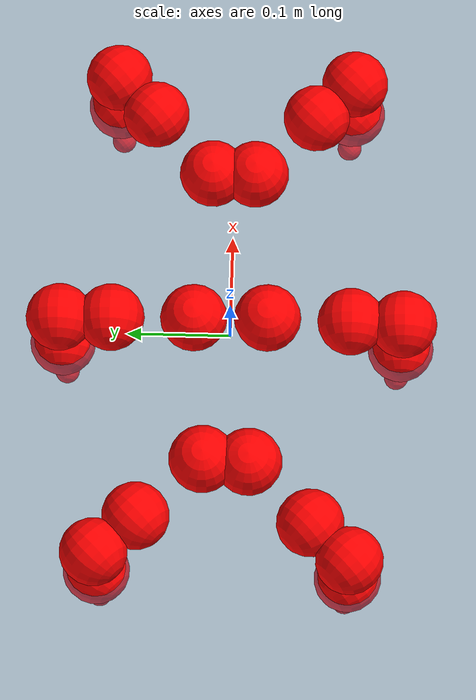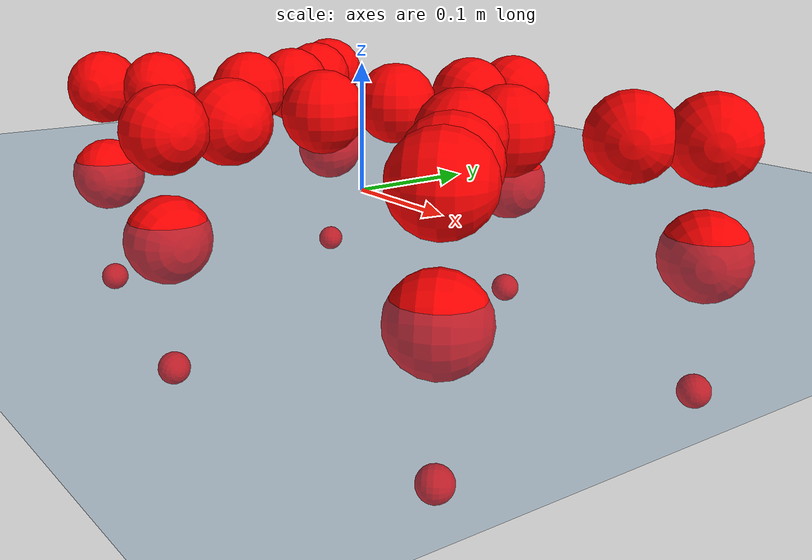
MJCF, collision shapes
<mujoco model="Golem">
  <compiler angle="radian" assetdir="assets" balanceinertia="true" inertiafromgeom="false"/>

  <option timestep="0.005" density="1.2" viscosity="2e-05"/>

  <size nkey="1"/>

  <visual>
    <quality shadowsize="8192"/>
    <map shadowclip="0.5"/>
  </visual>

  <default>
    <default class="/">
      <joint armature="0.01" damping="0.01" frictionloss="0.01"/>
      <geom contype="0" conaffinity="0" group="1" solref="-1000 -80"/>
      <site size="0.01 0.005 0.005" group="5"/>
      <general forcelimited="true" biastype="affine" gainprm="25" biasprm="0 -25 -0.5"/>
      <default class="visual">
        <geom type="mesh" group="2"/>
      </default>
      <default class="collision">
        <geom group="3"/>
      </default>
      <default class="foot">
        <geom size="0.01 0 0" condim="6" group="4" priority="1" solimp="0.015 1 0.01"/>
      </default>
      <default class="reward_collision_sphere">
        <geom group="5" rgba="1 0 0 1"/>
      </default>
    </default>
  </default>

  <asset>
    <texture type="skybox" colorspace="auto" name="//unnamed_texture_0" builtin="gradient" rgb1="0.95 0.95 0.95" rgb2="0.95 0.95 0.95" width="100" height="600"/>
    <texture type="2d" colorspace="auto" name="texplane" builtin="checker" rgb1="0.345 0.575 0.748" rgb2="0.345 0.575 0.748" markrgb="1 1 1" width="512" height="512"/>
    <material name="MatPlane" class="/" texture="texplane" texuniform="true" texrepeat="2 2" specular="0.9"/>
    <mesh name="body" class="/" file="body.stl" scale="0.001 0.001 0.001"/>
    <mesh name="coxa" class="/" file="coxa.stl" scale="0.001 0.001 0.001"/>
    <mesh name="femur" class="/" file="femur.stl" scale="0.001 0.001 0.001"/>
    <mesh name="tibia" class="/" file="tibia.stl" scale="0.001 0.001 0.001"/>
    <mesh name="tarsus" class="/" file="tarsus.stl" scale="0.001 0.001 0.001"/>
  </asset>

  <worldbody>
    <geom name="floor" class="/" size="100 100 0.125" type="plane" group="0" material="MatPlane"/>
    <light name="toplight_shadow" class="/" pos="0 0 5" dir="0.0990148 0.0990148 -0.990148" type="directional" ambient="0.04 0.04 0.04" diffuse="0.55 0.55 0.55" specular="0.12 0.12 0.12"/>
    <light name="toplight_fill" class="/" pos="0 0 5" dir="0.0990148 0.0990148 -0.990148" type="directional" castshadow="false" ambient="0.04 0.04 0.04" diffuse="0.3 0.3 0.3" specular="0.08 0.08 0.08"/>
    <body name="trunk" pos="-0.000129378 0.000146728 0.00028401" quat="1 0.00022498 0.000402179 -0.000207616">
      <inertial pos="0.000241906 -0.00066565 -0.00355271" quat="1 -0.0002749 -8.99709e-05 6.58601e-05" mass="1.9167" diaginertia="0.00631062 0.000239649 0.011016"/>
      <joint name="//unnamed_joint_0" type="free"/>
      <geom name="//unnamed_geom_1" class="/" pos="0 0 0.0652475" quat="1 0 0 0" type="mesh" rgba="0.9 0.9 0.9 1" mesh="body"/>
      <site name="imu" class="/" pos="0.121985 0.00444326 0.102993" size="0.0080155"/>
      <camera name="track" class="/" pos="0 -0.947199 0" quat="0.707107 0.707107 0 0" mode="trackcom"/>
      <camera name="ego_camera" class="/" pos="0.118502 0 0.101949" quat="-0.5 -0.5 0.5 0.5"/>
      <body name="coxa_RR" pos="-0.162542 -0.0400962 0.0662527" quat="0.382348 0.000435662 3.88883e-05 -0.924018">
        <inertial pos="-0.000255063 0.00012161 0.000434544" quat="0.999992 -0.0030278 0.000751717 0.00235381" mass="0.102111" diaginertia="0.00628488 0.000237457 0.0110103"/>
        <joint name="coxa_joint_RR" class="/" pos="0 0 0" axis="-0.002315 0.00127148 -0.999997" range="-3.13116 3.1293" armature="0.0079992" damping="0.0080403" frictionloss="0.00766366"/>
        <geom name="//unnamed_geom_2" class="/" type="mesh" rgba="0.2 0.2 0.2 1" mesh="coxa"/>
        <geom name="//unnamed_geom_3" class="reward_collision_sphere" size="0.032062" pos="-0.0273467 0 0"/>
        <body name="femur_RR" pos="0.0550206 0.00149207 -0.00137629" quat="0.500001 -0.499999 0.499999 0.5">
          <inertial pos="0.00024407 -6.92949e-05 -0.000464549" quat="1 0.000344607 -0.000630932 0.000317664" mass="0.102495" diaginertia="0.00622172 0.000235349 0.0110205"/>
          <joint name="femur_joint_RR" class="/" pos="0 0 0" axis="0.00255968 -0.00180547 -0.999995" range="-3.13176 3.13344" armature="0.00801366" damping="0.00151268" frictionloss="0.00806408"/>
          <geom name="//unnamed_geom_4" class="/" type="mesh" rgba="0.9 0.9 0.9 1" mesh="femur"/>
          <geom name="//unnamed_geom_5" class="reward_collision_sphere" size="0.032062"/>
          <body name="tibia_RR" pos="-6.36799e-05 -0.0512912 0.0013797" quat="0.000196552 1 9.36975e-05 0.000299427">
            <inertial pos="-0.000311321 -0.000476884 -0.00025851" quat="1 -0.000389945 -0.00024947 -0.000199777" mass="0.10264" diaginertia="0.0063069 0.000238337 0.011012"/>
            <joint name="tibia_joint_RR" class="/" pos="0 0 0" axis="-0.000409183 -0.00119119 0.999999" range="-3.12839 3.1328" armature="0.00813268" damping="0" frictionloss="0.00782425"/>
            <geom name="//unnamed_geom_6" class="/" type="mesh" rgba="0.2 0.2 0.2 1" mesh="tibia"/>
            <geom name="//unnamed_geom_7" class="reward_collision_sphere" size="0.032062"/>
            <body name="tarsus_RR" pos="0.0791907 -0.000488902 -0.0011986" quat="1 -0.00013786 0.000123779 3.54919e-05">
              <inertial pos="0.0552756 0.000507379 0.000476644" quat="0.499792 0.500393 0.500464 0.499351" mass="0.101599" diaginertia="0.00616518 0.000238089 0.0107707"/>
              <joint name="tarsus_joint_RR" class="/" pos="0 0 0" axis="0.000246039 0.00361229 0.999993" range="-3.12195 3.12955" armature="0.00796058" damping="0.00289581" frictionloss="0.00821195"/>
              <geom name="//unnamed_geom_8" class="/" type="mesh" rgba="0.9 0.9 0.9 1" mesh="tarsus"/>
              <geom name="foot_1" class="foot" size="0.00775775" pos="0.102094 0 0" quat="0 -0.707107 0 0.707107"/>
              <geom name="//unnamed_geom_10" class="reward_collision_sphere" size="0.032062"/>
              <geom name="//unnamed_geom_11" class="reward_collision_sphere" size="0.0120232" pos="0.0979923 0 0"/>
              <site name="foot_1" class="foot" pos="0.102094 0 0" quat="0 -0.707107 0 0.707107" size="0.0080155"/>
            </body>
          </body>
        </body>
      </body>
      <body name="coxa_RM" pos="-0.000691527 -0.0628707 0.0652918" quat="0.707222 4.16301e-05 -5.00977e-05 -0.706991">
        <inertial pos="-0.000599575 -0.000115101 8.19633e-05" quat="1 -0.000177361 0.000461612 -0.000103067" mass="0.10278" diaginertia="0.00624202 0.00023899 0.0110243"/>
        <joint name="coxa_joint_RM" class="/" pos="0 0 0" axis="-0.00279218 -0.000420269 -0.999996" range="-3.13583 3.13496" armature="0.00832623" damping="0.010695" frictionloss="0.00826372"/>
        <geom name="//unnamed_geom_12" class="/" type="mesh" rgba="0.2 0.2 0.2 1" mesh="coxa"/>
        <geom name="//unnamed_geom_13" class="reward_collision_sphere" size="0.032062" pos="-0.0273467 0 0"/>
        <body name="femur_RM" pos="0.0522522 -0.0014058 -0.000587" quat="0.500207 -0.499932 0.499899 0.499961">
          <inertial pos="-0.00078783 0.000178364 -4.48251e-05" quat="0.999999 0.000219749 -0.000956365 -0.00111277" mass="0.101373" diaginertia="0.00620015 0.000238823 0.0110432"/>
          <joint name="femur_joint_RM" class="/" pos="0 0 0" axis="0.00035053 0.00124797 -0.999999" range="-3.12152 3.14411" armature="0.00808262" damping="0.00109797" frictionloss="0.0077229"/>
          <geom name="//unnamed_geom_14" class="/" type="mesh" rgba="0.9 0.9 0.9 1" mesh="femur"/>
          <geom name="//unnamed_geom_15" class="reward_collision_sphere" size="0.032062"/>
          <body name="tibia_RM" pos="0.00118946 -0.0501215 -0.00105237" quat="-5.7043e-05 1 0.000138684 -0.00018922">
            <inertial pos="-0.000431405 -0.000250979 -5.99645e-05" quat="1 0.000113759 -9.81042e-05 6.30683e-05" mass="0.103129" diaginertia="0.006305 0.000236918 0.0109705"/>
            <joint name="tibia_joint_RM" class="/" pos="0 0 0" axis="-0.000255189 -9.47575e-06 1" range="-3.12961 3.15211" armature="0.00811911" damping="0.00284424" frictionloss="0.00835786"/>
            <geom name="//unnamed_geom_16" class="/" type="mesh" rgba="0.2 0.2 0.2 1" mesh="tibia"/>
            <geom name="//unnamed_geom_17" class="reward_collision_sphere" size="0.032062"/>
            <body name="tarsus_RM" pos="0.0789414 0.00055924 0.000474009" quat="1 4.50764e-05 9.45803e-05 4.94309e-05">
              <inertial pos="0.054014 0.000368619 0.000379465" quat="0.503006 0.499613 0.498562 0.498807" mass="0.10353" diaginertia="0.00622315 0.000236057 0.0111134"/>
              <joint name="tarsus_joint_RM" class="/" pos="0 0 0" axis="-7.02123e-05 -0.000566583 1" range="-3.12765 3.1204" armature="0.00837335" damping="0.00275503" frictionloss="0.00789474"/>
              <geom name="//unnamed_geom_18" class="/" type="mesh" rgba="0.9 0.9 0.9 1" mesh="tarsus"/>
              <geom name="foot_2" class="foot" size="0.00817706" pos="0.102094 0 0" quat="0 -0.707107 0 0.707107"/>
              <geom name="//unnamed_geom_20" class="reward_collision_sphere" size="0.032062"/>
              <geom name="//unnamed_geom_21" class="reward_collision_sphere" size="0.0120232" pos="0.0979923 0 0"/>
              <site name="foot_2" class="foot" pos="0.102094 0 0" quat="0 -0.707107 0 0.707107" size="0.0080155"/>
            </body>
          </body>
        </body>
      </body>
      <body name="coxa_RF" pos="0.163195 -0.0402387 0.0665799" quat="0.923969 6.99637e-05 9.30931e-05 -0.382468">
        <inertial pos="0.000778529 -0.00142035 -0.000587695" quat="0.999995 0.0024573 0.000994301 -0.00160474" mass="0.103028" diaginertia="0.0062406 0.000239534 0.0110093"/>
        <joint name="coxa_joint_RF" class="/" pos="0 0 0" axis="-0.00407944 0.00116941 -0.999991" range="-3.12412 3.14653" armature="0.00836188" damping="0.00397542" frictionloss="0.00788074"/>
        <geom name="//unnamed_geom_22" class="/" type="mesh" rgba="0.2 0.2 0.2 1" mesh="coxa"/>
        <geom name="//unnamed_geom_23" class="reward_collision_sphere" size="0.032062" pos="-0.0273467 0 0"/>
        <body name="femur_RF" pos="0.0558135 0.00152145 -0.00210316" quat="0.499876 -0.500042 0.50005 0.500032">
          <inertial pos="-0.000193026 0.000262677 0.000455995" quat="0.999996 -8.14384e-05 -0.00190886 -0.00209004" mass="0.102408" diaginertia="0.00634319 0.000235847 0.0109281"/>
          <joint name="femur_joint_RF" class="/" pos="0 0 0" axis="-0.000581856 -0.00107534 -0.999999" range="-3.15226 3.13756" armature="0.00822553" damping="0" frictionloss="0.00788627"/>
          <geom name="//unnamed_geom_24" class="/" type="mesh" rgba="0.9 0.9 0.9 1" mesh="femur"/>
          <geom name="//unnamed_geom_25" class="reward_collision_sphere" size="0.032062"/>
          <body name="tibia_RF" pos="2.52952e-05 -0.0515189 -0.000442549" quat="-0.000106763 1 -0.000137782 -9.23222e-05">
            <inertial pos="0.000493316 -0.000721326 0.000454635" quat="0.999993 -0.000857313 0.00076713 0.00346666" mass="0.102157" diaginertia="0.00623823 0.000237886 0.0109519"/>
            <joint name="tibia_joint_RF" class="/" pos="0 0 0" axis="-0.00101616 -0.000195418 0.999999" range="-3.1467 3.13467" armature="0.00809695" damping="0.00995176" frictionloss="0.00803065"/>
            <geom name="//unnamed_geom_26" class="/" type="mesh" rgba="0.2 0.2 0.2 1" mesh="tibia"/>
            <geom name="//unnamed_geom_27" class="reward_collision_sphere" size="0.032062"/>
            <body name="tarsus_RF" pos="0.0806212 -0.000456973 0.000642862" quat="1 -0.000191818 3.04195e-05 -4.11085e-05">
              <inertial pos="0.0542493 0.000478039 0.000875247" quat="0.497929 0.499904 0.501512 0.500648" mass="0.103534" diaginertia="0.00628403 0.000235498 0.0109115"/>
              <joint name="tarsus_joint_RF" class="/" pos="0 0 0" axis="0.00173786 -0.00517312 0.999985" range="-3.12709 3.14176" armature="0.00801576" damping="0.00185975" frictionloss="0.00772001"/>
              <geom name="//unnamed_geom_28" class="/" type="mesh" rgba="0.9 0.9 0.9 1" mesh="tarsus"/>
              <geom name="foot_3" class="foot" size="0.00811284" pos="0.102094 0 0" quat="0 -0.707107 0 0.707107"/>
              <geom name="//unnamed_geom_30" class="reward_collision_sphere" size="0.032062"/>
              <geom name="//unnamed_geom_31" class="reward_collision_sphere" size="0.0120232" pos="0.0979923 0 0"/>
              <site name="foot_3" class="foot" pos="0.102094 0 0" quat="0 -0.707107 0 0.707107" size="0.0080155"/>
            </body>
          </body>
        </body>
      </body>
      <body name="coxa_LR" pos="-0.161197 0.041922 0.0673712" quat="0.382468 -4.3405e-05 3.58782e-05 0.923969">
        <inertial pos="0.000559433 -0.000598877 0.00173041" quat="0.999998 -0.000832373 0.00119874 -0.00149141" mass="0.103217" diaginertia="0.00630587 0.000238212 0.0110119"/>
        <joint name="coxa_joint_LR" class="/" pos="0 0 0" axis="-0.000725263 0.000907642 -0.999999" range="-3.14772 3.13687" armature="0.00825739" damping="0.00297064" frictionloss="0.00799321"/>
        <geom name="//unnamed_geom_32" class="/" type="mesh" rgba="0.2 0.2 0.2 1" mesh="coxa"/>
        <geom name="//unnamed_geom_33" class="reward_collision_sphere" size="0.032062" pos="-0.0273467 0 0"/>
        <body name="femur_LR" pos="0.0555107 -0.00368955 -0.0022773" quat="0.49973 -0.500059 0.500143 0.500069">
          <inertial pos="-0.000397499 -0.000528274 -0.000458992" quat="1 -1.79654e-06 -8.52291e-05 8.29213e-05" mass="0.102395" diaginertia="0.00629481 0.000238506 0.0109009"/>
          <joint name="femur_joint_LR" class="/" pos="0 0 0" axis="-0.00138805 1.1738e-05 0.999999" range="-3.15577 3.15996" armature="0.00805161" damping="0.00645757" frictionloss="0.00836293"/>
          <geom name="//unnamed_geom_34" class="/" type="mesh" rgba="0.9 0.9 0.9 1" mesh="femur"/>
          <geom name="//unnamed_geom_35" class="reward_collision_sphere" size="0.032062"/>
          <body name="tibia_LR" pos="0.000371924 -0.0521907 -0.00194761" quat="5.60301e-05 1 -0.000257437 6.0468e-05">
            <inertial pos="-0.00060973 0.000640204 -0.000397997" quat="1 -0.000294235 0.000183676 -0.000626152" mass="0.103513" diaginertia="0.00625982 0.000234923 0.010941"/>
            <joint name="tibia_joint_LR" class="/" pos="0 0 0" axis="-0.00208586 -0.000393294 -0.999998" range="-3.13887 3.13654" armature="0.00773314" damping="0.00171445" frictionloss="0.00837314"/>
            <geom name="//unnamed_geom_36" class="/" type="mesh" rgba="0.2 0.2 0.2 1" mesh="tibia"/>
            <geom name="//unnamed_geom_37" class="reward_collision_sphere" size="0.032062"/>
            <body name="tarsus_LR" pos="0.0798957 -0.000842042 0.00075014" quat="1 -5.23032e-06 -4.33559e-05 -3.87298e-05">
              <inertial pos="0.0553441 0.00110515 -0.000111117" quat="0.499906 0.500038 0.499007 0.501047" mass="0.103563" diaginertia="0.00633276 0.000241172 0.0110535"/>
              <joint name="tarsus_joint_LR" class="/" pos="0 0 0" axis="0.000437391 -0.000526334 -1" range="-3.13002 3.14027" armature="0.00800193" damping="0" frictionloss="0.00819149"/>
              <geom name="//unnamed_geom_38" class="/" type="mesh" rgba="0.9 0.9 0.9 1" mesh="tarsus"/>
              <geom name="foot_4" class="foot" size="0.0079237" pos="0.102094 0 0" quat="0.707107 0 -0.707107 0"/>
              <geom name="//unnamed_geom_40" class="reward_collision_sphere" size="0.032062"/>
              <geom name="//unnamed_geom_41" class="reward_collision_sphere" size="0.0120232" pos="0.0979923 0 0"/>
              <site name="foot_4" class="foot" pos="0.102094 0 0" quat="0.707107 0 -0.707107 0" size="0.0080155"/>
            </body>
          </body>
        </body>
      </body>
      <body name="coxa_LM" pos="-0.00228791 0.0619983 0.0656738" quat="0.70762 0.000350089 -0.00016308 0.706594">
        <inertial pos="0.000783075 2.50739e-05 -0.000227607" quat="1 -0.000746976 -0.000613297 0.000122807" mass="0.104812" diaginertia="0.00644469 0.000241293 0.011054"/>
        <joint name="coxa_joint_LM" class="/" pos="0 0 0" axis="-0.000375932 0.0004729 -1" stiffness="0.00342141" range="-3.13356 3.12902" armature="0.00831344" damping="0.00337151" frictionloss="0.0078695"/>
        <geom name="//unnamed_geom_42" class="/" type="mesh" rgba="0.2 0.2 0.2 1" mesh="coxa"/>
        <geom name="//unnamed_geom_43" class="reward_collision_sphere" size="0.032062" pos="-0.0273467 0 0"/>
        <body name="femur_LM" pos="0.0515912 0.00159107 -0.000306628" quat="0.499994 -0.499972 0.500023 0.500012">
          <inertial pos="-0.00018991 0.000773994 -1.39308e-05" quat="0.99999 -3.55089e-05 -0.00132251 0.00420168" mass="0.102819" diaginertia="0.00623991 0.000235448 0.010872"/>
          <joint name="femur_joint_LM" class="/" pos="0 0 0" axis="0.00012986 0.000385956 1" range="-3.13383 3.13918" armature="0.00835498" damping="0.000692578" frictionloss="0.00768441"/>
          <geom name="//unnamed_geom_44" class="/" type="mesh" rgba="0.9 0.9 0.9 1" mesh="femur"/>
          <geom name="//unnamed_geom_45" class="reward_collision_sphere" size="0.032062"/>
          <body name="tibia_LM" pos="0.00128532 -0.049164 0.000576839" quat="2.98923e-05 1 6.2908e-06 0.000194186">
            <inertial pos="-0.000635668 -0.000897701 2.13668e-05" quat="1 -0.000121547 0.000140442 -3.43723e-05" mass="0.103113" diaginertia="0.00634729 0.00023921 0.011083"/>
            <joint name="tibia_joint_LM" class="/" pos="0 0 0" axis="-0.000134773 -0.000344031 -1" range="-3.1506 3.13888" armature="0.00793427" damping="0" frictionloss="0.00837641"/>
            <geom name="//unnamed_geom_46" class="/" type="mesh" rgba="0.2 0.2 0.2 1" mesh="tibia"/>
            <geom name="//unnamed_geom_47" class="reward_collision_sphere" size="0.032062"/>
            <body name="tarsus_LM" pos="0.0804131 -0.000282534 -0.000526197" quat="1 6.95898e-05 7.33289e-05 -6.70791e-05">
              <inertial pos="0.0556995 -8.35237e-06 -0.000139172" quat="0.500519 0.500422 0.49927 0.499788" mass="0.1047" diaginertia="0.00633664 0.000239606 0.0110455"/>
              <joint name="tarsus_joint_LM" class="/" pos="0 0 0" axis="-0.00177344 -0.0030281 -0.999994" range="-3.13709 3.15048" armature="0.00800774" damping="0.00170069" frictionloss="0.00811811"/>
              <geom name="//unnamed_geom_48" class="/" type="mesh" rgba="0.9 0.9 0.9 1" mesh="tarsus"/>
              <geom name="foot_5" class="foot" size="0.00820139" pos="0.102094 0 0" quat="0.707107 0 -0.707107 0"/>
              <geom name="//unnamed_geom_50" class="reward_collision_sphere" size="0.032062"/>
              <geom name="//unnamed_geom_51" class="reward_collision_sphere" size="0.0120232" pos="0.0979923 0 0"/>
              <site name="foot_5" class="foot" pos="0.102094 0 0" quat="0.707107 0 -0.707107 0" size="0.0080155"/>
            </body>
          </body>
        </body>
      </body>
      <body name="coxa_LF" pos="0.163274 0.0395876 0.0656812" quat="0.923885 9.64858e-05 -0.000165655 0.38267">
        <inertial pos="-0.000384745 0.000769923 0.000106833" quat="0.999999 0.000178908 -0.00123553 -0.000534957" mass="0.103406" diaginertia="0.00632053 0.000239723 0.0110946"/>
        <joint name="coxa_joint_LF" class="/" pos="0 0 0" axis="-0.00127452 0.00114732 -0.999999" stiffness="0.000148969" range="-3.12423 3.14686" armature="0.00798267" damping="0.000620579" frictionloss="0.00766047"/>
        <geom name="//unnamed_geom_52" class="/" type="mesh" rgba="0.2 0.2 0.2 1" mesh="coxa"/>
        <geom name="//unnamed_geom_53" class="reward_collision_sphere" size="0.032062" pos="-0.0273467 0 0"/>
        <body name="femur_LF" pos="0.0548628 -0.00218041 -0.00114509" quat="0.499736 -0.500383 0.499704 0.500177">
          <inertial pos="0.000348042 -0.000441734 -0.000522351" quat="0.999989 -0.000733536 0.00409543 0.00209004" mass="0.102652" diaginertia="0.00628423 0.000236636 0.0111038"/>
          <joint name="femur_joint_LF" class="/" pos="0 0 0" axis="1.62743e-05 0.000157116 1" range="-3.1456 3.15434" armature="0.00803258" damping="0" frictionloss="0.00758654"/>
          <geom name="//unnamed_geom_54" class="/" type="mesh" rgba="0.9 0.9 0.9 1" mesh="femur"/>
          <geom name="//unnamed_geom_55" class="reward_collision_sphere" size="0.032062"/>
          <body name="tibia_LF" pos="7.33535e-05 -0.0524626 -0.00020926" quat="-3.35293e-05 1 -3.09506e-05 -1.61649e-06">
            <inertial pos="0.000420277 0.00010257 -0.000339975" quat="0.999991 -0.00028761 -0.00432048 -0.000461622" mass="0.102004" diaginertia="0.00630394 0.000240999 0.0111422"/>
            <joint name="tibia_joint_LF" class="/" pos="0 0 0" axis="-0.000110267 -0.000112217 -1" range="-3.15559 3.13348" armature="0.00767024" damping="0" frictionloss="0.00832186"/>
            <geom name="//unnamed_geom_56" class="/" type="mesh" rgba="0.2 0.2 0.2 1" mesh="tibia"/>
            <geom name="//unnamed_geom_57" class="reward_collision_sphere" size="0.032062"/>
            <body name="tarsus_LF" pos="0.080386 0.000487286 0.000297662" quat="1 3.73121e-05 -1.28613e-05 -0.000104596">
              <inertial pos="0.0571508 8.44368e-06 0.00118173" quat="0.500329 0.50016 0.499895 0.499617" mass="0.103069" diaginertia="0.00632637 0.000239905 0.0111092"/>
              <joint name="tarsus_joint_LF" class="/" pos="0 0 0" axis="0.00124235 0.000760297 -0.999999" stiffness="0.0314469" range="-3.13624 3.11761" armature="0.00797134" damping="0.0228608" frictionloss="0.00816209"/>
              <geom name="//unnamed_geom_58" class="/" type="mesh" rgba="0.9 0.9 0.9 1" mesh="tarsus"/>
              <geom name="foot_6" class="foot" size="0.00794948" pos="0.102094 0 0" quat="0.707107 0 -0.707107 0"/>
              <geom name="//unnamed_geom_60" class="reward_collision_sphere" size="0.032062"/>
              <geom name="//unnamed_geom_61" class="reward_collision_sphere" size="0.0120232" pos="0.0979923 0 0"/>
              <site name="foot_6" class="foot" pos="0.102094 0 0" quat="0.707107 0 -0.707107 0" size="0.0080155"/>
            </body>
          </body>
        </body>
      </body>
    </body>
  </worldbody>

  <contact>
    <pair class="/" geom1="floor" geom2="foot_1" name="//unnamed_contact_0"/>
    <pair class="/" geom1="floor" geom2="foot_2" name="//unnamed_contact_1"/>
    <pair class="/" geom1="floor" geom2="foot_3" name="//unnamed_contact_2"/>
    <pair class="/" geom1="floor" geom2="foot_4" name="//unnamed_contact_3"/>
    <pair class="/" geom1="floor" geom2="foot_5" name="//unnamed_contact_4"/>
    <pair class="/" geom1="floor" geom2="foot_6" name="//unnamed_contact_5"/>
  </contact>

  <actuator>
    <general name="coxa_joint_RR" class="/" joint="coxa_joint_RR" forcerange="-5.71887 5.71887" gainprm="18.8166" biasprm="0 -18.8166 -0.40845"/>
    <general name="femur_joint_RR" class="/" joint="femur_joint_RR" forcerange="-5.6986 5.6986" gainprm="18.8166" biasprm="0 -18.8166 -0.40845"/>
    <general name="tibia_joint_RR" class="/" joint="tibia_joint_RR" forcerange="-5.79134 5.79134" gainprm="18.8166" biasprm="0 -18.8166 -0.40845"/>
    <general name="tarsus_joint_RR" class="/" joint="tarsus_joint_RR" forcerange="-5.95835 5.95835" gainprm="18.8166" biasprm="0 -18.8166 -0.40845"/>
    <general name="coxa_joint_RM" class="/" joint="coxa_joint_RM" forcerange="-5.72704 5.72704" gainprm="18.8166" biasprm="0 -18.8166 -0.40845"/>
    <general name="femur_joint_RM" class="/" joint="femur_joint_RM" forcerange="-5.81803 5.81803" gainprm="18.8166" biasprm="0 -18.8166 -0.40845"/>
    <general name="tibia_joint_RM" class="/" joint="tibia_joint_RM" forcerange="-6.02023 6.02023" gainprm="18.8166" biasprm="0 -18.8166 -0.40845"/>
    <general name="tarsus_joint_RM" class="/" joint="tarsus_joint_RM" forcerange="-6.03418 6.03418" gainprm="18.8166" biasprm="0 -18.8166 -0.40845"/>
    <general name="coxa_joint_RF" class="/" joint="coxa_joint_RF" forcerange="-5.91459 5.91459" gainprm="18.8166" biasprm="0 -18.8166 -0.40845"/>
    <general name="femur_joint_RF" class="/" joint="femur_joint_RF" forcerange="-5.78517 5.78517" gainprm="18.8166" biasprm="0 -18.8166 -0.40845"/>
    <general name="tibia_joint_RF" class="/" joint="tibia_joint_RF" forcerange="-5.99589 5.99589" gainprm="18.8166" biasprm="0 -18.8166 -0.40845"/>
    <general name="tarsus_joint_RF" class="/" joint="tarsus_joint_RF" forcerange="-5.7898 5.7898" gainprm="18.8166" biasprm="0 -18.8166 -0.40845"/>
    <general name="coxa_joint_LR" class="/" joint="coxa_joint_LR" forcerange="-5.66477 5.66477" gainprm="18.8166" biasprm="0 -18.8166 -0.40845"/>
    <general name="femur_joint_LR" class="/" joint="femur_joint_LR" forcerange="-6.00833 6.00833" gainprm="18.8166" biasprm="0 -18.8166 -0.40845"/>
    <general name="tibia_joint_LR" class="/" joint="tibia_joint_LR" forcerange="-6.00848 6.00848" gainprm="18.8166" biasprm="0 -18.8166 -0.40845"/>
    <general name="tarsus_joint_LR" class="/" joint="tarsus_joint_LR" forcerange="-5.78012 5.78012" gainprm="18.8166" biasprm="0 -18.8166 -0.40845"/>
    <general name="coxa_joint_LM" class="/" joint="coxa_joint_LM" forcerange="-5.856 5.856" gainprm="18.8166" biasprm="0 -18.8166 -0.40845"/>
    <general name="femur_joint_LM" class="/" joint="femur_joint_LM" forcerange="-5.83887 5.83887" gainprm="18.8166" biasprm="0 -18.8166 -0.40845"/>
    <general name="tibia_joint_LM" class="/" joint="tibia_joint_LM" forcerange="-5.67858 5.67858" gainprm="18.8166" biasprm="0 -18.8166 -0.40845"/>
    <general name="tarsus_joint_LM" class="/" joint="tarsus_joint_LM" forcerange="-5.85909 5.85909" gainprm="18.8166" biasprm="0 -18.8166 -0.40845"/>
    <general name="coxa_joint_LF" class="/" joint="coxa_joint_LF" forcerange="-5.82512 5.82512" gainprm="18.8166" biasprm="0 -18.8166 -0.40845"/>
    <general name="femur_joint_LF" class="/" joint="femur_joint_LF" forcerange="-5.85386 5.85386" gainprm="18.8166" biasprm="0 -18.8166 -0.40845"/>
    <general name="tibia_joint_LF" class="/" joint="tibia_joint_LF" forcerange="-5.83327 5.83327" gainprm="18.8166" biasprm="0 -18.8166 -0.40845"/>
    <general name="tarsus_joint_LF" class="/" joint="tarsus_joint_LF" forcerange="-5.83164 5.83164" gainprm="18.8166" biasprm="0 -18.8166 -0.40845"/>
  </actuator>

  <sensor>
    <gyro site="imu" name="imu_angular_velocity"/>
    <velocimeter site="imu" name="imu_linear_velocity"/>
    <framelinvel objtype="site" objname="foot_1" name="foot_1_global_linear_velocity"/>
    <framelinvel objtype="site" objname="foot_2" name="foot_2_global_linear_velocity"/>
    <framelinvel objtype="site" objname="foot_3" name="foot_3_global_linear_velocity"/>
    <framelinvel objtype="site" objname="foot_4" name="foot_4_global_linear_velocity"/>
    <framelinvel objtype="site" objname="foot_5" name="foot_5_global_linear_velocity"/>
    <framelinvel objtype="site" objname="foot_6" name="foot_6_global_linear_velocity"/>
  </sensor>

  <keyframe>
    <key name="home" qpos="0 0 0.1457 1 0 0 0 0 0 0 0 0 0 0 0 0 0 0 0 0 0 0 0 0 0 0 0 0 0 0 0"/>
  </keyframe>
</mujoco>
